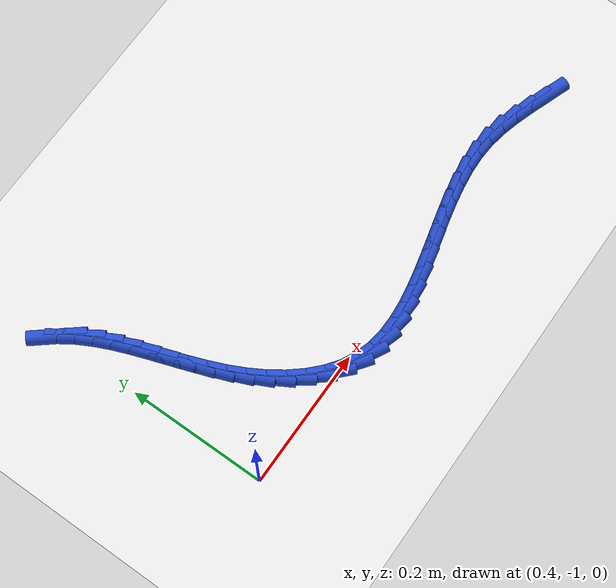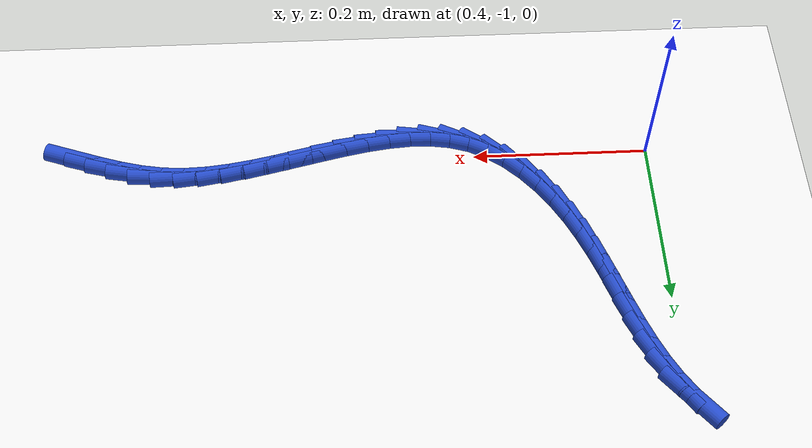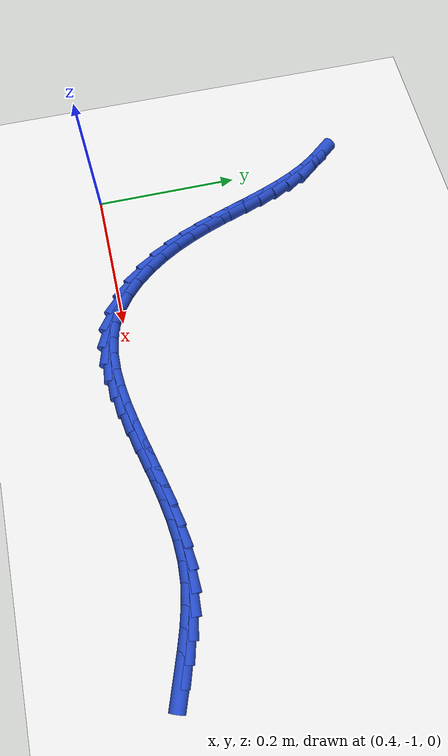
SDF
<sdf version="1.6">
 <world name="default">
  <model name="ground_plane">
   <static>1</static>
   <link name="link">
    <collision name="collision">
     <geometry><plane><normal>0 0 1</normal><size>100 100</size></plane></geometry>
     <surface><friction><ode><mu>100</mu><mu2>50</mu2></ode></friction></surface>
    </collision>
    <visual name="visual">
     <cast_shadows>0</cast_shadows>
     <geometry><plane><normal>0 0 1</normal><size>100 100</size></plane></geometry>
     <material>
      <script><uri>file://media/materials/scripts/gazebo.material</uri><name>Gazebo/WhiteGlow</name></script>
     </material>
    </visual>
   </link>
  </model>
  <model name="line">
   <link name="link_213">
    <pose>1.0547850600436985 -1.0083253876088347 0.01 0 1.57 -0.34685873209115314</pose>
    <collision name="collision">
     <geometry><cylinder><radius>0.01</radius><length>0.08</length></cylinder></geometry>
    </collision>
    <visual name="visual">
     <material>
      <script><name>Gazebo/Blue</name><uri>file://media/materials/scripts/gazebo.material</uri></script>
     </material>
     <geometry><cylinder><radius>0.01</radius><length>0.08</length></cylinder></geometry>
    </visual>
   </link>
   <link name="link_214">
    <pose>1.0308911205231999 -0.9996883800195713 0.01 0 1.57 -0.31654736838511344</pose>
    <collision name="collision">
     <geometry><cylinder><radius>0.01</radius><length>0.08</length></cylinder></geometry>
    </collision>
    <visual name="visual">
     <material>
      <script><name>Gazebo/Blue</name><uri>file://media/materials/scripts/gazebo.material</uri></script>
     </material>
     <geometry><cylinder><radius>0.01</radius><length>0.08</length></cylinder></geometry>
    </visual>
   </link>
   <link name="link_215">
    <pose>1.006795748100531 -0.9917956522818935 0.01 0 1.57 -0.25897480223436603</pose>
    <collision name="collision">
     <geometry><cylinder><radius>0.01</radius><length>0.08</length></cylinder></geometry>
    </collision>
    <visual name="visual">
     <material>
      <script><name>Gazebo/Blue</name><uri>file://media/materials/scripts/gazebo.material</uri></script>
     </material>
     <geometry><cylinder><radius>0.01</radius><length>0.08</length></cylinder></geometry>
    </visual>
   </link>
   <link name="link_216">
    <pose>0.9823886041019495 -0.9853296118140162 0.01 0 1.57 -0.1737077802020032</pose>
    <collision name="collision">
     <geometry><cylinder><radius>0.01</radius><length>0.08</length></cylinder></geometry>
    </collision>
    <visual name="visual">
     <material>
      <script><name>Gazebo/Blue</name><uri>file://media/materials/scripts/gazebo.material</uri></script>
     </material>
     <geometry><cylinder><radius>0.01</radius><length>0.08</length></cylinder></geometry>
    </visual>
   </link>
   <link name="link_217">
    <pose>0.9575593498537127 -0.9809726660341551 0.01 0 1.57 -0.06462823372854913</pose>
    <collision name="collision">
     <geometry><cylinder><radius>0.01</radius><length>0.08</length></cylinder></geometry>
    </collision>
    <visual name="visual">
     <material>
      <script><name>Gazebo/Blue</name><uri>file://media/materials/scripts/gazebo.material</uri></script>
     </material>
     <geometry><cylinder><radius>0.01</radius><length>0.08</length></cylinder></geometry>
    </visual>
   </link>
   <link name="link_218">
    <pose>0.9322122732038325 -0.9793322446952256 0.01 0 1.57 0.03759360222413494</pose>
    <collision name="collision">
     <geometry><cylinder><radius>0.01</radius><length>0.08</length></cylinder></geometry>
    </collision>
    <visual name="visual">
     <material>
      <script><name>Gazebo/Blue</name><uri>file://media/materials/scripts/gazebo.material</uri></script>
     </material>
     <geometry><cylinder><radius>0.01</radius><length>0.08</length></cylinder></geometry>
    </visual>
   </link>
   <link name="link_219">
    <pose>0.9063906254112988 -0.9803034310132753 0.01 0 1.57 0.11728106234993824</pose>
    <collision name="collision">
     <geometry><cylinder><radius>0.01</radius><length>0.08</length></cylinder></geometry>
    </collision>
    <visual name="visual">
     <material>
      <script><name>Gazebo/Blue</name><uri>file://media/materials/scripts/gazebo.material</uri></script>
     </material>
     <geometry><cylinder><radius>0.01</radius><length>0.08</length></cylinder></geometry>
    </visual>
   </link>
   <link name="link_220">
    <pose>0.8802144711139979 -0.9833875517179801 0.01 0 1.57 0.1759086884193572</pose>
    <collision name="collision">
     <geometry><cylinder><radius>0.01</radius><length>0.08</length></cylinder></geometry>
    </collision>
    <visual name="visual">
     <material>
      <script><name>Gazebo/Blue</name><uri>file://media/materials/scripts/gazebo.material</uri></script>
     </material>
     <geometry><cylinder><radius>0.01</radius><length>0.08</length></cylinder></geometry>
    </visual>
   </link>
   <link name="link_221">
    <pose>0.8538046848298527 -0.98808178197685 0.01 0 1.57 0.21534721217006778</pose>
    <collision name="collision">
     <geometry><cylinder><radius>0.01</radius><length>0.08</length></cylinder></geometry>
    </collision>
    <visual name="visual">
     <material>
      <script><name>Gazebo/Blue</name><uri>file://media/materials/scripts/gazebo.material</uri></script>
     </material>
     <geometry><cylinder><radius>0.01</radius><length>0.08</length></cylinder></geometry>
    </visual>
   </link>
   <link name="link_222">
    <pose>0.8272821410767867 -0.9938832969573954 0.01 0 1.57 0.2370604747803763</pose>
    <collision name="collision">
     <geometry><cylinder><radius>0.01</radius><length>0.08</length></cylinder></geometry>
    </collision>
    <visual name="visual">
     <material>
      <script><name>Gazebo/Blue</name><uri>file://media/materials/scripts/gazebo.material</uri></script>
     </material>
     <geometry><cylinder><radius>0.01</radius><length>0.08</length></cylinder></geometry>
    </visual>
   </link>
   <link name="link_223">
    <pose>0.8007677143727222 -1.0002892718271252 0.01 0 1.57 0.24181046766495037</pose>
    <collision name="collision">
     <geometry><cylinder><radius>0.01</radius><length>0.08</length></cylinder></geometry>
    </collision>
    <visual name="visual">
     <material>
      <script><name>Gazebo/Blue</name><uri>file://media/materials/scripts/gazebo.material</uri></script>
     </material>
     <geometry><cylinder><radius>0.01</radius><length>0.08</length></cylinder></geometry>
    </visual>
   </link>
   <link name="link_224">
    <pose>0.7743822792355826 -1.0067968817535509 0.01 0 1.57 0.22952658446991037</pose>
    <collision name="collision">
     <geometry><cylinder><radius>0.01</radius><length>0.08</length></cylinder></geometry>
    </collision>
    <visual name="visual">
     <material>
      <script><name>Gazebo/Blue</name><uri>file://media/materials/scripts/gazebo.material</uri></script>
     </material>
     <geometry><cylinder><radius>0.01</radius><length>0.08</length></cylinder></geometry>
    </visual>
   </link>
   <link name="link_225">
    <pose>0.748246710183291 -1.0129033019041818 0.01 0 1.57 0.1992399629623749</pose>
    <collision name="collision">
     <geometry><cylinder><radius>0.01</radius><length>0.08</length></cylinder></geometry>
    </collision>
    <visual name="visual">
     <material>
      <script><name>Gazebo/Blue</name><uri>file://media/materials/scripts/gazebo.material</uri></script>
     </material>
     <geometry><cylinder><radius>0.01</radius><length>0.08</length></cylinder></geometry>
    </visual>
   </link>
   <link name="link_226">
    <pose>0.7224818817337696 -1.018105707446528 0.01 0 1.57 0.14906733345225462</pose>
    <collision name="collision">
     <geometry><cylinder><radius>0.01</radius><length>0.08</length></cylinder></geometry>
    </collision>
    <visual name="visual">
     <material>
      <script><name>Gazebo/Blue</name><uri>file://media/materials/scripts/gazebo.material</uri></script>
     </material>
     <geometry><cylinder><radius>0.01</radius><length>0.08</length></cylinder></geometry>
    </visual>
   </link>
   <link name="link_227">
    <pose>0.6972086684049427 -1.0219012735480995 0.01 0 1.57 0.07632534572576212</pose>
    <collision name="collision">
     <geometry><cylinder><radius>0.01</radius><length>0.08</length></cylinder></geometry>
    </collision>
    <visual name="visual">
     <material>
      <script><name>Gazebo/Blue</name><uri>file://media/materials/scripts/gazebo.material</uri></script>
     </material>
     <geometry><cylinder><radius>0.01</radius><length>0.08</length></cylinder></geometry>
    </visual>
   </link>
   <link name="link_228">
    <pose>0.6725479447147328 -1.0237871753764065 0.01 0 1.57 -0.02200419505043335</pose>
    <collision name="collision">
     <geometry><cylinder><radius>0.01</radius><length>0.08</length></cylinder></geometry>
    </collision>
    <visual name="visual">
     <material>
      <script><name>Gazebo/Blue</name><uri>file://media/materials/scripts/gazebo.material</uri></script>
     </material>
     <geometry><cylinder><radius>0.01</radius><length>0.08</length></cylinder></geometry>
    </visual>
   </link>
   <link name="link_229">
    <pose>0.6486205851810628 -1.023260588098959 0.01 0 1.57 -0.1480816648997374</pose>
    <collision name="collision">
     <geometry><cylinder><radius>0.01</radius><length>0.08</length></cylinder></geometry>
    </collision>
    <visual name="visual">
     <material>
      <script><name>Gazebo/Blue</name><uri>file://media/materials/scripts/gazebo.material</uri></script>
     </material>
     <geometry><cylinder><radius>0.01</radius><length>0.08</length></cylinder></geometry>
    </visual>
   </link>
   <link name="link_230">
    <pose>0.6255474643218558 -1.019818686883267 0.01 0 1.57 -0.3010043392134973</pose>
    <collision name="collision">
     <geometry><cylinder><radius>0.01</radius><length>0.08</length></cylinder></geometry>
    </collision>
    <visual name="visual">
     <material>
      <script><name>Gazebo/Blue</name><uri>file://media/materials/scripts/gazebo.material</uri></script>
     </material>
     <geometry><cylinder><radius>0.01</radius><length>0.08</length></cylinder></geometry>
    </visual>
   </link>
   <link name="link_231">
    <pose>0.6034494566550344 -1.0129586468968401 0.01 0 1.57 -0.47329414310436607</pose>
    <collision name="collision">
     <geometry><cylinder><radius>0.01</radius><length>0.08</length></cylinder></geometry>
    </collision>
    <visual name="visual">
     <material>
      <script><name>Gazebo/Blue</name><uri>file://media/materials/scripts/gazebo.material</uri></script>
     </material>
     <geometry><cylinder><radius>0.01</radius><length>0.08</length></cylinder></geometry>
    </visual>
   </link>
   <link name="link_232">
    <pose>0.5824485488433888 -1.0022037252651899 0.01 0 1.57 -0.6347549935101509</pose>
    <collision name="collision">
     <geometry><cylinder><radius>0.01</radius><length>0.08</length></cylinder></geometry>
    </collision>
    <visual name="visual">
     <material>
      <script><name>Gazebo/Blue</name><uri>file://media/materials/scripts/gazebo.material</uri></script>
     </material>
     <geometry><cylinder><radius>0.01</radius><length>0.08</length></cylinder></geometry>
    </visual>
   </link>
   <link name="link_233">
    <pose>0.5626913256998501 -0.9876540535283895 0.01 0 1.57 -0.7669960276757081</pose>
    <collision name="collision">
     <geometry><cylinder><radius>0.01</radius><length>0.08</length></cylinder></geometry>
    </collision>
    <visual name="visual">
     <material>
      <script><name>Gazebo/Blue</name><uri>file://media/materials/scripts/gazebo.material</uri></script>
     </material>
     <geometry><cylinder><radius>0.01</radius><length>0.08</length></cylinder></geometry>
    </visual>
   </link>
   <link name="link_234">
    <pose>0.5443484371277438 -0.9699741363542941 0.01 0 1.57 -0.8763953899201475</pose>
    <collision name="collision">
     <geometry><cylinder><radius>0.01</radius><length>0.08</length></cylinder></geometry>
    </collision>
    <visual name="visual">
     <material>
      <script><name>Gazebo/Blue</name><uri>file://media/materials/scripts/gazebo.material</uri></script>
     </material>
     <geometry><cylinder><radius>0.01</radius><length>0.08</length></cylinder></geometry>
    </visual>
   </link>
   <link name="link_235">
    <pose>0.527591538547272 -0.9498520597351797 0.01 0 1.57 -0.9697703144459526</pose>
    <collision name="collision">
     <geometry><cylinder><radius>0.01</radius><length>0.08</length></cylinder></geometry>
    </collision>
    <visual name="visual">
     <material>
      <script><name>Gazebo/Blue</name><uri>file://media/materials/scripts/gazebo.material</uri></script>
     </material>
     <geometry><cylinder><radius>0.01</radius><length>0.08</length></cylinder></geometry>
    </visual>
   </link>
   <link name="link_236">
    <pose>0.5125922853786353 -0.9279759096633219 0.01 0 1.57 -1.0525729266017252</pose>
    <collision name="collision">
     <geometry><cylinder><radius>0.01</radius><length>0.08</length></cylinder></geometry>
    </collision>
    <visual name="visual">
     <material>
      <script><name>Gazebo/Blue</name><uri>file://media/materials/scripts/gazebo.material</uri></script>
     </material>
     <geometry><cylinder><radius>0.01</radius><length>0.08</length></cylinder></geometry>
    </visual>
   </link>
   <link name="link_237">
    <pose>0.4994997642727967 -0.905014840684138 0.01 0 1.57 -1.1232352006979989</pose>
    <collision name="collision">
     <geometry><cylinder><radius>0.01</radius><length>0.08</length></cylinder></geometry>
    </collision>
    <visual name="visual">
     <material>
      <script><name>Gazebo/Blue</name><uri>file://media/materials/scripts/gazebo.material</uri></script>
     </material>
     <geometry><cylinder><radius>0.01</radius><length>0.08</length></cylinder></geometry>
    </visual>
   </link>
   <link name="link_238">
    <pose>0.488152738949867 -0.8813776979742806 0.01 0 1.57 -1.1777969736352514</pose>
    <collision name="collision">
     <geometry><cylinder><radius>0.01</radius><length>0.08</length></cylinder></geometry>
    </collision>
    <visual name="visual">
     <material>
      <script><name>Gazebo/Blue</name><uri>file://media/materials/scripts/gazebo.material</uri></script>
     </material>
     <geometry><cylinder><radius>0.01</radius><length>0.08</length></cylinder></geometry>
    </visual>
   </link>
   <link name="link_239">
    <pose>0.47816435465121715 -0.8572840703005669 0.01 0 1.57 -1.215772745392821</pose>
    <collision name="collision">
     <geometry><cylinder><radius>0.01</radius><length>0.08</length></cylinder></geometry>
    </collision>
    <visual name="visual">
     <material>
      <script><name>Gazebo/Blue</name><uri>file://media/materials/scripts/gazebo.material</uri></script>
     </material>
     <geometry><cylinder><radius>0.01</radius><length>0.08</length></cylinder></geometry>
    </visual>
   </link>
   <link name="link_240">
    <pose>0.4691426702089285 -0.8329492797776925 0.01 0 1.57 -1.237024271367202</pose>
    <collision name="collision">
     <geometry><cylinder><radius>0.01</radius><length>0.08</length></cylinder></geometry>
    </collision>
    <visual name="visual">
     <material>
      <script><name>Gazebo/Blue</name><uri>file://media/materials/scripts/gazebo.material</uri></script>
     </material>
     <geometry><cylinder><radius>0.01</radius><length>0.08</length></cylinder></geometry>
    </visual>
   </link>
   <link name="link_241">
    <pose>0.46069574445508243 -0.8085886485203523 0.01 0 1.57 -1.2413559808859445</pose>
    <collision name="collision">
     <geometry><cylinder><radius>0.01</radius><length>0.08</length></cylinder></geometry>
    </collision>
    <visual name="visual">
     <material>
      <script><name>Gazebo/Blue</name><uri>file://media/materials/scripts/gazebo.material</uri></script>
     </material>
     <geometry><cylinder><radius>0.01</radius><length>0.08</length></cylinder></geometry>
    </visual>
   </link>
   <link name="link_242">
    <pose>0.45243163622176014 -0.7844174986432413 0.01 0 1.57 -1.2283228750642985</pose>
    <collision name="collision">
     <geometry><cylinder><radius>0.01</radius><length>0.08</length></cylinder></geometry>
    </collision>
    <visual name="visual">
     <material>
      <script><name>Gazebo/Blue</name><uri>file://media/materials/scripts/gazebo.material</uri></script>
     </material>
     <geometry><cylinder><radius>0.01</radius><length>0.08</length></cylinder></geometry>
    </visual>
   </link>
   <link name="link_243">
    <pose>0.4439584043410427 -0.7606511522610542 0.01 0 1.57 -1.1971688383976267</pose>
    <collision name="collision">
     <geometry><cylinder><radius>0.01</radius><length>0.08</length></cylinder></geometry>
    </collision>
    <visual name="visual">
     <material>
      <script><name>Gazebo/Blue</name><uri>file://media/materials/scripts/gazebo.material</uri></script>
     </material>
     <geometry><cylinder><radius>0.01</radius><length>0.08</length></cylinder></geometry>
    </visual>
   </link>
   <link name="link_244">
    <pose>0.43488410764501173 -0.7375049314884876 0.01 0 1.57 -1.1469195349950154</pose>
    <collision name="collision">
     <geometry><cylinder><radius>0.01</radius><length>0.08</length></cylinder></geometry>
    </collision>
    <visual name="visual">
     <material>
      <script><name>Gazebo/Blue</name><uri>file://media/materials/scripts/gazebo.material</uri></script>
     </material>
     <geometry><cylinder><radius>0.01</radius><length>0.08</length></cylinder></geometry>
    </visual>
   </link>
   <link name="link_245">
    <pose>0.4248168049657484 -0.7151941584402359 0.01 0 1.57 -1.0766888492527409</pose>
    <collision name="collision">
     <geometry><cylinder><radius>0.01</radius><length>0.08</length></cylinder></geometry>
    </collision>
    <visual name="visual">
     <material>
      <script><name>Gazebo/Blue</name><uri>file://media/materials/scripts/gazebo.material</uri></script>
     </material>
     <geometry><cylinder><radius>0.01</radius><length>0.08</length></cylinder></geometry>
    </visual>
   </link>
   <link name="link_246">
    <pose>0.41336455513533404 -0.6939341552309942 0.01 0 1.57 -0.9862734695073982</pose>
    <collision name="collision">
     <geometry><cylinder><radius>0.01</radius><length>0.08</length></cylinder></geometry>
    </collision>
    <visual name="visual">
     <material>
      <script><name>Gazebo/Blue</name><uri>file://media/materials/scripts/gazebo.material</uri></script>
     </material>
     <geometry><cylinder><radius>0.01</radius><length>0.08</length></cylinder></geometry>
    </visual>
   </link>
   <link name="link_247">
    <pose>0.4001355074593486 -0.6739401884842977 0.01 0 1.57 -0.883971973111897</pose>
    <collision name="collision">
     <geometry><cylinder><radius>0.01</radius><length>0.08</length></cylinder></geometry>
    </collision>
    <visual name="visual">
     <material>
      <script><name>Gazebo/Blue</name><uri>file://media/materials/scripts/gazebo.material</uri></script>
     </material>
     <geometry><cylinder><radius>0.01</radius><length>0.08</length></cylinder></geometry>
    </visual>
   </link>
  </model>
 </world>
</sdf>
